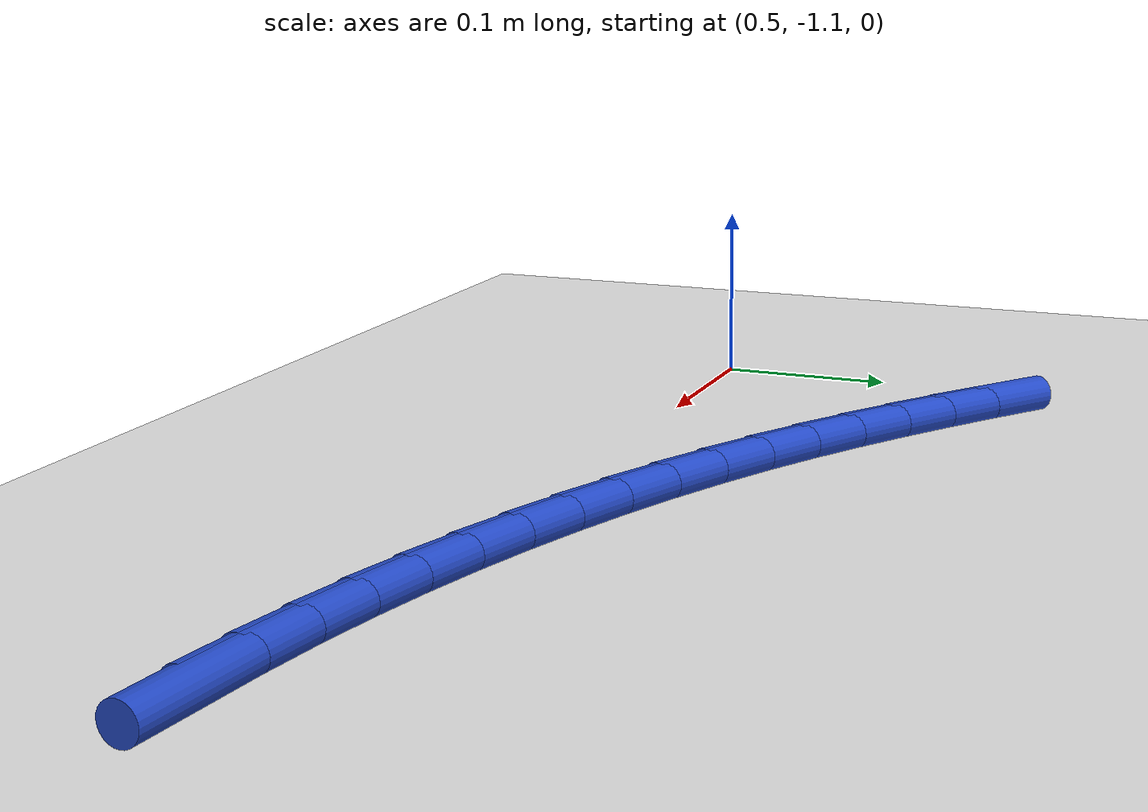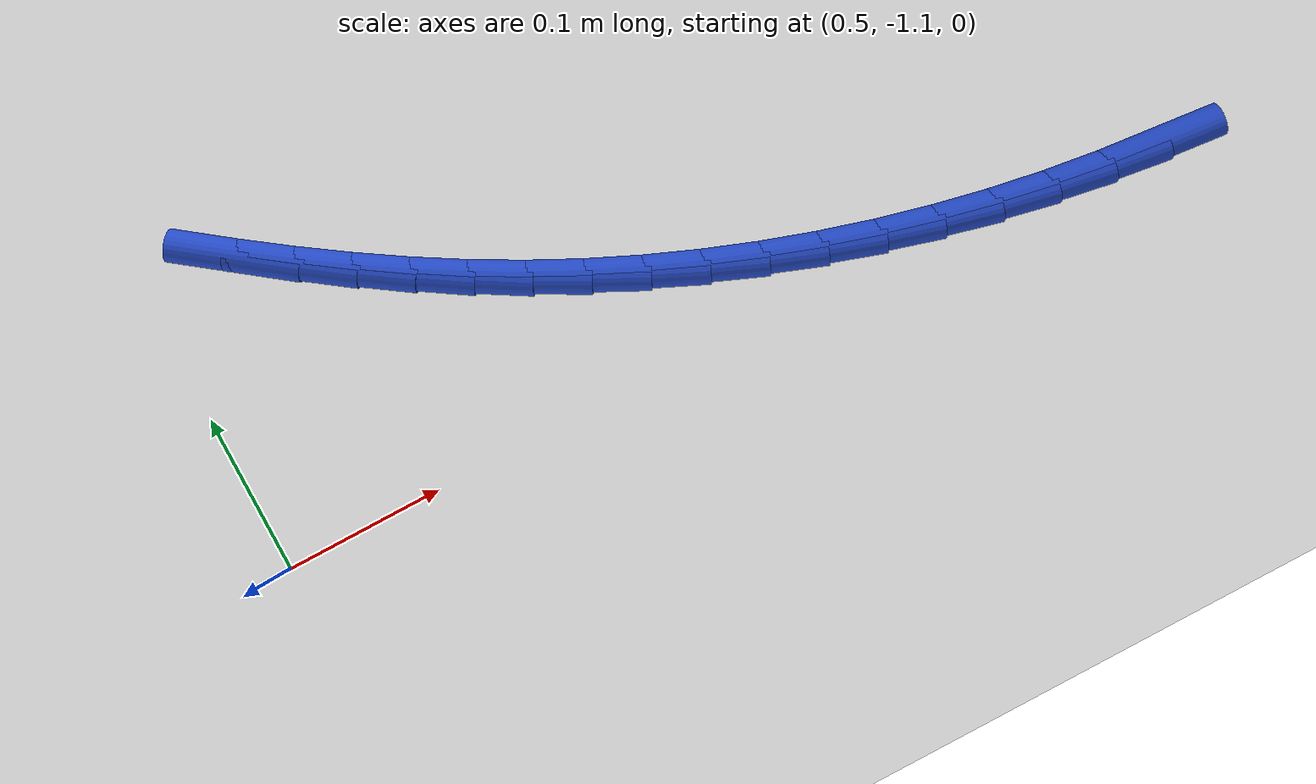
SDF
<sdf version="1.6">
 <world name="default">
  <model name="ground_plane">
   <static>1</static>
   <link name="link">
    <collision name="collision">
     <geometry><plane><normal>0 0 1</normal><size>100 100</size></plane></geometry>
     <surface><friction><ode><mu>100</mu><mu2>50</mu2></ode></friction></surface>
    </collision>
    <visual name="visual">
     <cast_shadows>0</cast_shadows>
     <geometry><plane><normal>0 0 1</normal><size>100 100</size></plane></geometry>
     <material>
      <script><uri>file://media/materials/scripts/gazebo.material</uri><name>Gazebo/WhiteGlow</name></script>
     </material>
    </visual>
   </link>
  </model>
  <model name="line">
   <link name="link_151">
    <pose>1.0690521573094145 -1.119399749610387 0.01 0 1.57 -0.10173486241726547</pose>
    <collision name="collision">
     <geometry><cylinder><radius>0.01</radius><length>0.08</length></cylinder></geometry>
    </collision>
    <visual name="visual">
     <material>
      <script><name>Gazebo/Blue</name><uri>file://media/materials/scripts/gazebo.material</uri></script>
     </material>
     <geometry><cylinder><radius>0.01</radius><length>0.08</length></cylinder></geometry>
    </visual>
   </link>
   <link name="link_152">
    <pose>1.034829326394545 -1.1159060329891128 0.01 0 1.57 -0.13921572452687137</pose>
    <collision name="collision">
     <geometry><cylinder><radius>0.01</radius><length>0.08</length></cylinder></geometry>
    </collision>
    <visual name="visual">
     <material>
      <script><name>Gazebo/Blue</name><uri>file://media/materials/scripts/gazebo.material</uri></script>
     </material>
     <geometry><cylinder><radius>0.01</radius><length>0.08</length></cylinder></geometry>
    </visual>
   </link>
   <link name="link_153">
    <pose>1.0006099050489734 -1.1111111346855802 0.01 0 1.57 -0.17602660314473303</pose>
    <collision name="collision">
     <geometry><cylinder><radius>0.01</radius><length>0.08</length></cylinder></geometry>
    </collision>
    <visual name="visual">
     <material>
      <script><name>Gazebo/Blue</name><uri>file://media/materials/scripts/gazebo.material</uri></script>
     </material>
     <geometry><cylinder><radius>0.01</radius><length>0.08</length></cylinder></geometry>
    </visual>
   </link>
   <link name="link_154">
    <pose>0.9664700371951273 -1.1050387615426813 0.01 0 1.57 -0.2123257911414072</pose>
    <collision name="collision">
     <geometry><cylinder><radius>0.01</radius><length>0.08</length></cylinder></geometry>
    </collision>
    <visual name="visual">
     <material>
      <script><name>Gazebo/Blue</name><uri>file://media/materials/scripts/gazebo.material</uri></script>
     </material>
     <geometry><cylinder><radius>0.01</radius><length>0.08</length></cylinder></geometry>
    </visual>
   </link>
   <link name="link_155">
    <pose>0.9324858667554354 -1.0977126204033092 0.01 0 1.57 -0.24826969266634574</pose>
    <collision name="collision">
     <geometry><cylinder><radius>0.01</radius><length>0.08</length></cylinder></geometry>
    </collision>
    <visual name="visual">
     <material>
      <script><name>Gazebo/Blue</name><uri>file://media/materials/scripts/gazebo.material</uri></script>
     </material>
     <geometry><cylinder><radius>0.01</radius><length>0.08</length></cylinder></geometry>
    </visual>
   </link>
   <link name="link_156">
    <pose>0.8987335376523258 -1.0891564181103561 0.01 0 1.57 -0.2840133412458008</pose>
    <collision name="collision">
     <geometry><cylinder><radius>0.01</radius><length>0.08</length></cylinder></geometry>
    </collision>
    <visual name="visual">
     <material>
      <script><name>Gazebo/Blue</name><uri>file://media/materials/scripts/gazebo.material</uri></script>
     </material>
     <geometry><cylinder><radius>0.01</radius><length>0.08</length></cylinder></geometry>
    </visual>
   </link>
   <link name="link_157">
    <pose>0.8652891938082263 -1.079393861506714 0.01 0 1.57 -0.3197110501305003</pose>
    <collision name="collision">
     <geometry><cylinder><radius>0.01</radius><length>0.08</length></cylinder></geometry>
    </collision>
    <visual name="visual">
     <material>
      <script><name>Gazebo/Blue</name><uri>file://media/materials/scripts/gazebo.material</uri></script>
     </material>
     <geometry><cylinder><radius>0.01</radius><length>0.08</length></cylinder></geometry>
    </visual>
   </link>
   <link name="link_158">
    <pose>0.8322289791455656 -1.068448657435276 0.01 0 1.57 -0.35551713691086095</pose>
    <collision name="collision">
     <geometry><cylinder><radius>0.01</radius><length>0.08</length></cylinder></geometry>
    </collision>
    <visual name="visual">
     <material>
      <script><name>Gazebo/Blue</name><uri>file://media/materials/scripts/gazebo.material</uri></script>
     </material>
     <geometry><cylinder><radius>0.01</radius><length>0.08</length></cylinder></geometry>
    </visual>
   </link>
   <link name="link_159">
    <pose>0.799629037586772 -1.0563445127389348 0.01 0 1.57 -0.39158667012127685</pose>
    <collision name="collision">
     <geometry><cylinder><radius>0.01</radius><length>0.08</length></cylinder></geometry>
    </collision>
    <visual name="visual">
     <material>
      <script><name>Gazebo/Blue</name><uri>file://media/materials/scripts/gazebo.material</uri></script>
     </material>
     <geometry><cylinder><radius>0.01</radius><length>0.08</length></cylinder></geometry>
    </visual>
   </link>
   <link name="link_160">
    <pose>0.7675655130542732 -1.0431051342605828 0.01 0 1.57 -0.4280761867737092</pose>
    <collision name="collision">
     <geometry><cylinder><radius>0.01</radius><length>0.08</length></cylinder></geometry>
    </collision>
    <visual name="visual">
     <material>
      <script><name>Gazebo/Blue</name><uri>file://media/materials/scripts/gazebo.material</uri></script>
     </material>
     <geometry><cylinder><radius>0.01</radius><length>0.08</length></cylinder></geometry>
    </visual>
   </link>
   <link name="link_161">
    <pose>0.7361145494704981 -1.0287542288431124 0.01 0 1.57 -0.4651440404320976</pose>
    <collision name="collision">
     <geometry><cylinder><radius>0.01</radius><length>0.08</length></cylinder></geometry>
    </collision>
    <visual name="visual">
     <material>
      <script><name>Gazebo/Blue</name><uri>file://media/materials/scripts/gazebo.material</uri></script>
     </material>
     <geometry><cylinder><radius>0.01</radius><length>0.08</length></cylinder></geometry>
    </visual>
   </link>
   <link name="link_162">
    <pose>0.7053522794724341 -1.0133155086803185 0.01 0 1.57 -0.502151656128513</pose>
    <collision name="collision">
     <geometry><cylinder><radius>0.01</radius><length>0.08</length></cylinder></geometry>
    </collision>
    <visual name="visual">
     <material>
      <script><name>Gazebo/Blue</name><uri>file://media/materials/scripts/gazebo.material</uri></script>
     </material>
     <geometry><cylinder><radius>0.01</radius><length>0.08</length></cylinder></geometry>
    </visual>
   </link>
   <link name="link_163">
    <pose>0.6753243066727561 -0.9968271610612712 0.01 0 1.57 -0.5365713360745638</pose>
    <collision name="collision">
     <geometry><cylinder><radius>0.01</radius><length>0.08</length></cylinder></geometry>
    </collision>
    <visual name="visual">
     <material>
      <script><name>Gazebo/Blue</name><uri>file://media/materials/scripts/gazebo.material</uri></script>
     </material>
     <geometry><cylinder><radius>0.01</radius><length>0.08</length></cylinder></geometry>
    </visual>
   </link>
   <link name="link_164">
    <pose>0.6459792559032193 -0.9793733549965356 0.01 0 1.57 -0.5677573216954316</pose>
    <collision name="collision">
     <geometry><cylinder><radius>0.01</radius><length>0.08</length></cylinder></geometry>
    </collision>
    <visual name="visual">
     <material>
      <script><name>Gazebo/Blue</name><uri>file://media/materials/scripts/gazebo.material</uri></script>
     </material>
     <geometry><cylinder><radius>0.01</radius><length>0.08</length></cylinder></geometry>
    </visual>
   </link>
   <link name="link_165">
    <pose>0.6172465393450305 -0.961047369022888 0.01 0 1.57 -0.5955989821712446</pose>
    <collision name="collision">
     <geometry><cylinder><radius>0.01</radius><length>0.08</length></cylinder></geometry>
    </collision>
    <visual name="visual">
     <material>
      <script><name>Gazebo/Blue</name><uri>file://media/materials/scripts/gazebo.material</uri></script>
     </material>
     <geometry><cylinder><radius>0.01</radius><length>0.08</length></cylinder></geometry>
    </visual>
   </link>
   <link name="link_166">
    <pose>0.5890555691793969 -0.9419424816771041 0.01 0 1.57 -0.6200259752319893</pose>
    <collision name="collision">
     <geometry><cylinder><radius>0.01</radius><length>0.08</length></cylinder></geometry>
    </collision>
    <visual name="visual">
     <material>
      <script><name>Gazebo/Blue</name><uri>file://media/materials/scripts/gazebo.material</uri></script>
     </material>
     <geometry><cylinder><radius>0.01</radius><length>0.08</length></cylinder></geometry>
    </visual>
   </link>
   <link name="link_167">
    <pose>0.5613357575875262 -0.9221519714959612 0.01 0 1.57 -0.6409997012242472</pose>
    <collision name="collision">
     <geometry><cylinder><radius>0.01</radius><length>0.08</length></cylinder></geometry>
    </collision>
    <visual name="visual">
     <material>
      <script><name>Gazebo/Blue</name><uri>file://media/materials/scripts/gazebo.material</uri></script>
     </material>
     <geometry><cylinder><radius>0.01</radius><length>0.08</length></cylinder></geometry>
    </visual>
   </link>
  </model>
 </world>
</sdf>
